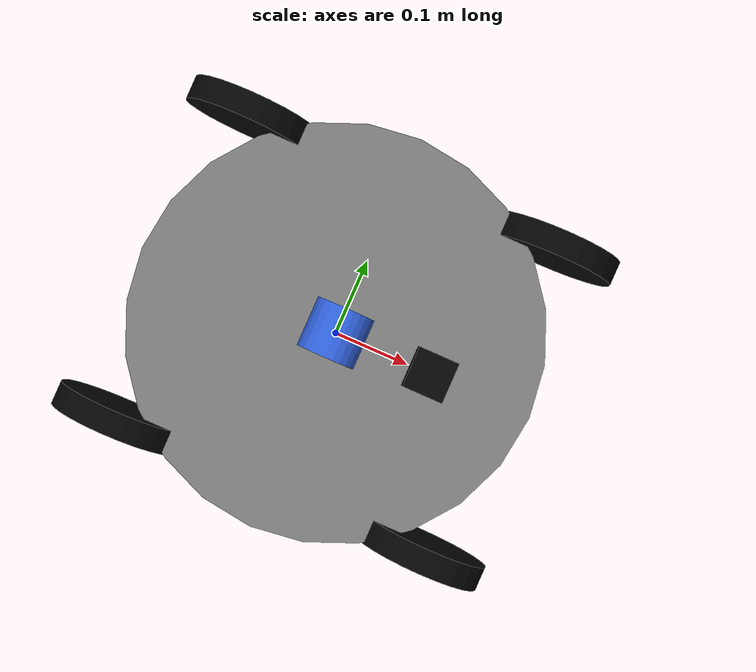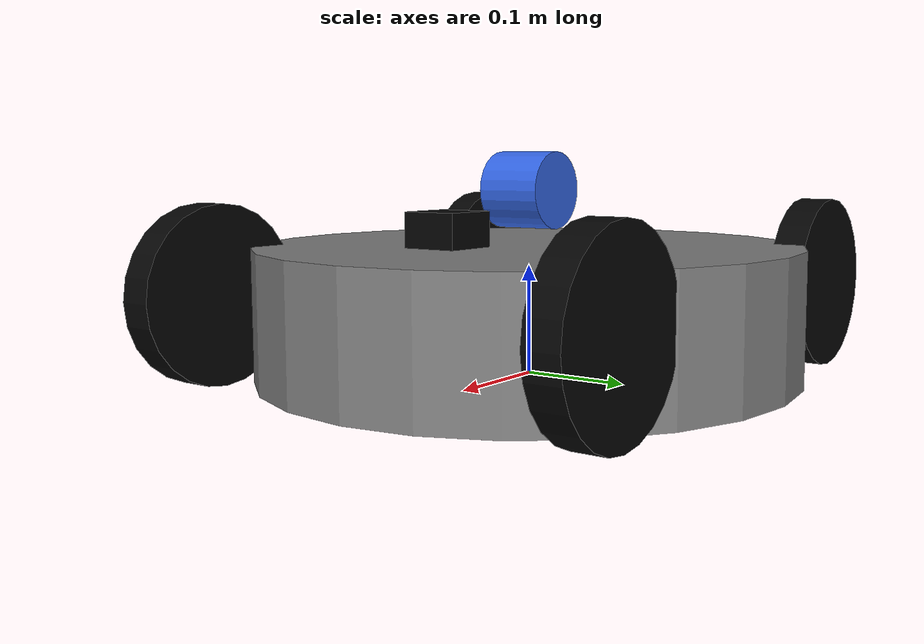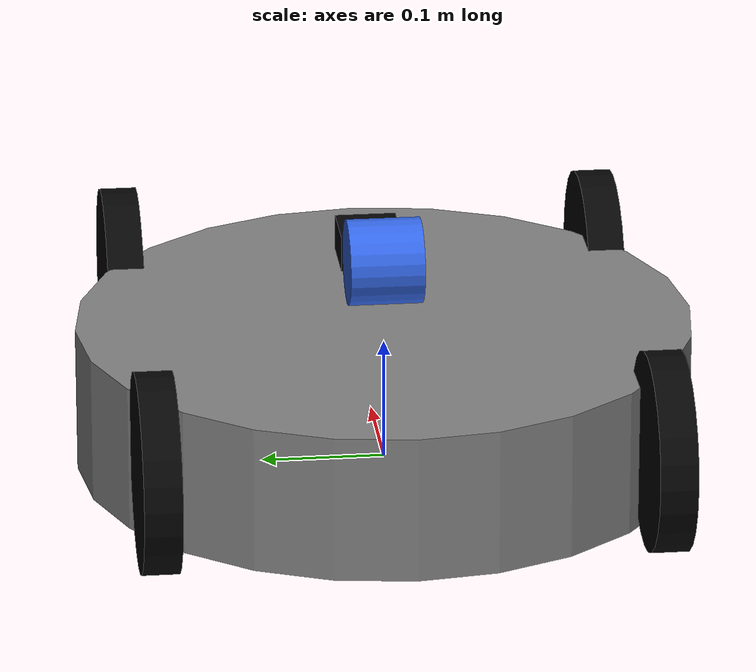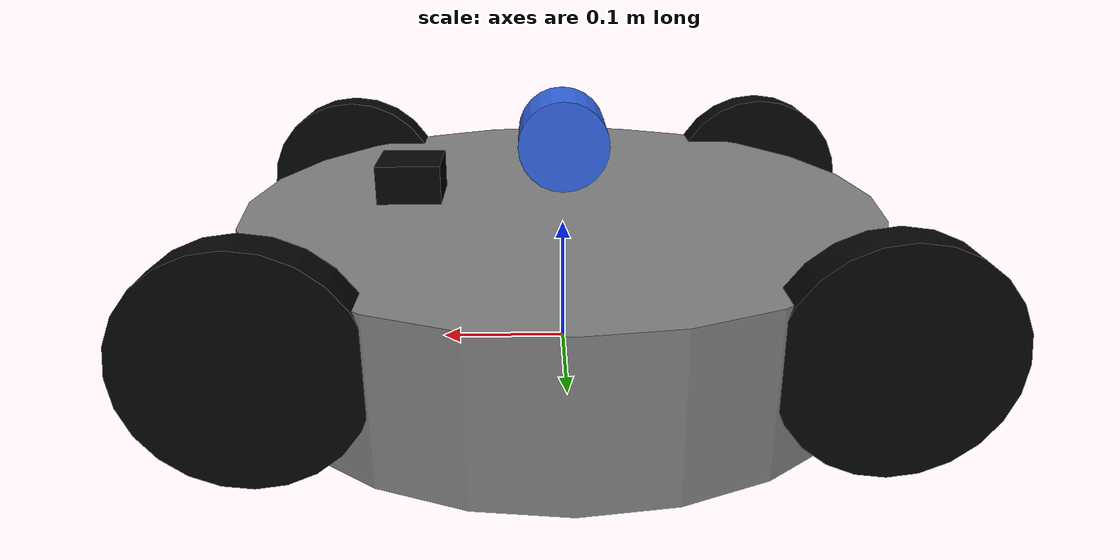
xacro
<?xml version="1.0"?>
<robot xmlns:xacro="http://www.ros.org/wiki/xacro" name="lunabot">
  <xacro:include filename="materials.xacro"/>
  <xacro:property name="base_radius" value="0.25"/>
  <xacro:property name="base_height" value="0.12"/>
  <xacro:property name="wheel_radius" value="0.08"/>
  <xacro:property name="wheel_thickness" value="0.03"/>

  <link name="base_link">
    <visual>
      <geometry>
        <cylinder radius="${base_radius}" length="${base_height}"/>
      </geometry>
      <origin xyz="0 0 ${base_height/2}" rpy="0 0 0"/>
      <material name="gray"/>
    </visual>
    <collision>
      <geometry>
        <cylinder radius="${base_radius}" length="${base_height}"/>
      </geometry>
      <origin xyz="0 0 ${base_height/2}" rpy="0 0 0"/>
    </collision>
    <inertial>
      <mass value="15.0"/>
      <origin xyz="0 0 ${base_height/2}"/>
      <inertia ixx="0.6" ixy="0.0" ixz="0.0" iyy="0.6" iyz="0.0" izz="0.6"/>
    </inertial>
  </link>

  <link name="base_footprint"/>
  <joint name="base_footprint_joint" type="fixed">
    <parent link="base_footprint"/>
    <child link="base_link"/>
    <origin xyz="0 0 0"/>
  </joint>

  <xacro:macro name="wheel" params="name x y">
    <link name="${name}">
      <visual>
        <geometry>
          <cylinder radius="${wheel_radius}" length="${wheel_thickness}"/>
        </geometry>
        <origin xyz="0 0 0" rpy="1.5708 0 0"/>
        <material name="black"/>
      </visual>
      <collision>
        <geometry>
          <cylinder radius="${wheel_radius}" length="${wheel_thickness}"/>
        </geometry>
        <origin xyz="0 0 0" rpy="1.5708 0 0"/>
      </collision>
      <inertial>
        <mass value="0.5"/>
        <inertia ixx="0.001" ixy="0.0" ixz="0.0" iyy="0.001" iyz="0.0" izz="0.001"/>
      </inertial>
    </link>
    <joint name="${name}_joint" type="continuous">
      <parent link="base_link"/>
      <child link="${name}"/>
      <origin xyz="${x} ${y} ${wheel_radius}" rpy="0 0 0"/>
      <axis xyz="0 1 0"/>
    </joint>
  </xacro:macro>

  <xacro:wheel name="wheel_fl" x="${ base_radius - 0.05 }" y="${ base_radius - 0.05 }"/>
  <xacro:wheel name="wheel_fr" x="${ base_radius - 0.05 }" y="${ -base_radius + 0.05 }"/>
  <xacro:wheel name="wheel_rl" x="${ -base_radius + 0.05 }" y="${ base_radius - 0.05 }"/>
  <xacro:wheel name="wheel_rr" x="${ -base_radius + 0.05 }" y="${ -base_radius + 0.05 }"/>

  <link name="lidar_link">
    <visual>
      <geometry>
        <cylinder radius="0.035" length="0.06"/>
      </geometry>
      <origin xyz="0 0 0" rpy="1.5708 0 0"/>
      <material name="blue"/>
    </visual>
  </link>
  <joint name="lidar_joint" type="fixed">
    <parent link="base_link"/>
    <child link="lidar_link"/>
    <origin xyz="0.0 0.0 ${base_height + 0.05}" rpy="0 0 0"/>
  </joint>

  <link name="camera_link">
    <visual>
      <geometry>
        <box size="0.05 0.05 0.03"/>
      </geometry>
      <material name="black"/>
    </visual>
  </link>
  <joint name="camera_joint" type="fixed">
    <parent link="base_link"/>
    <child link="camera_link"/>
    <origin xyz="0.12 0.0 ${base_height + 0.02}" rpy="0 0 0"/>
  </joint>

  <link name="imu_link"/>
  <joint name="imu_joint" type="fixed">
    <parent link="base_link"/>
    <child link="imu_link"/>
    <origin xyz="0 0 ${base_height/2}"/>
  </joint>

  <!-- Gazebo diff-drive plugin to drive via /cmd_vel and publish /odom -->
  <gazebo>
    <plugin name="diff_drive" filename="libgazebo_ros_diff_drive.so">
      <ros>
        <namespace>/</namespace>
        <remapping>cmd_vel:=cmd_vel</remapping>
        <remapping>odom:=odom</remapping>
      </ros>
      <update_rate>50</update_rate>
      <left_joint>wheel_fl_joint</left_joint>
      <left_joint>wheel_rl_joint</left_joint>
      <right_joint>wheel_fr_joint</right_joint>
      <right_joint>wheel_rr_joint</right_joint>
      <wheel_separation>${2*base_radius - 0.1}</wheel_separation>
      <wheel_diameter>${2*wheel_radius}</wheel_diameter>
      <publish_tf>true</publish_tf>
      <odometry_frame>odom</odometry_frame>
      <robot_base_frame>base_footprint</robot_base_frame>
      <cmd_vel_topic>cmd_vel</cmd_vel_topic>
      <odom_topic>odom</odom_topic>
    </plugin>
  </gazebo>

</robot>

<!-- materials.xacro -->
<robot xmlns:xacro="http://www.ros.org/wiki/xacro" name="materials">
  <material name="black">
    <color rgba="0.02 0.02 0.02 1.0"/>
  </material>
  <material name="gray">
    <color rgba="0.5 0.5 0.5 1.0"/>
  </material>
  <material name="blue">
    <color rgba="0.2 0.4 0.9 1.0"/>
  </material>
</robot>
